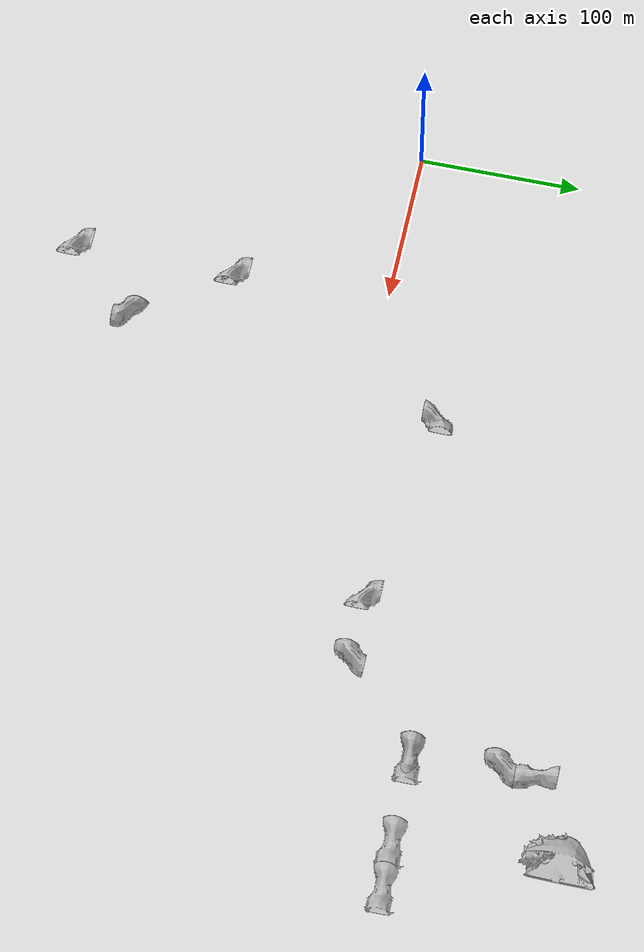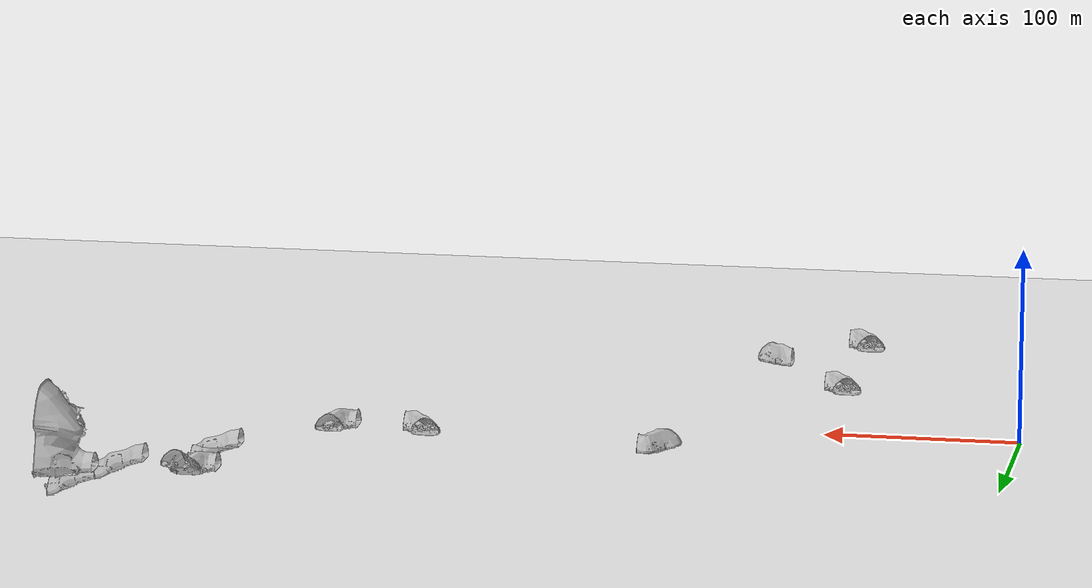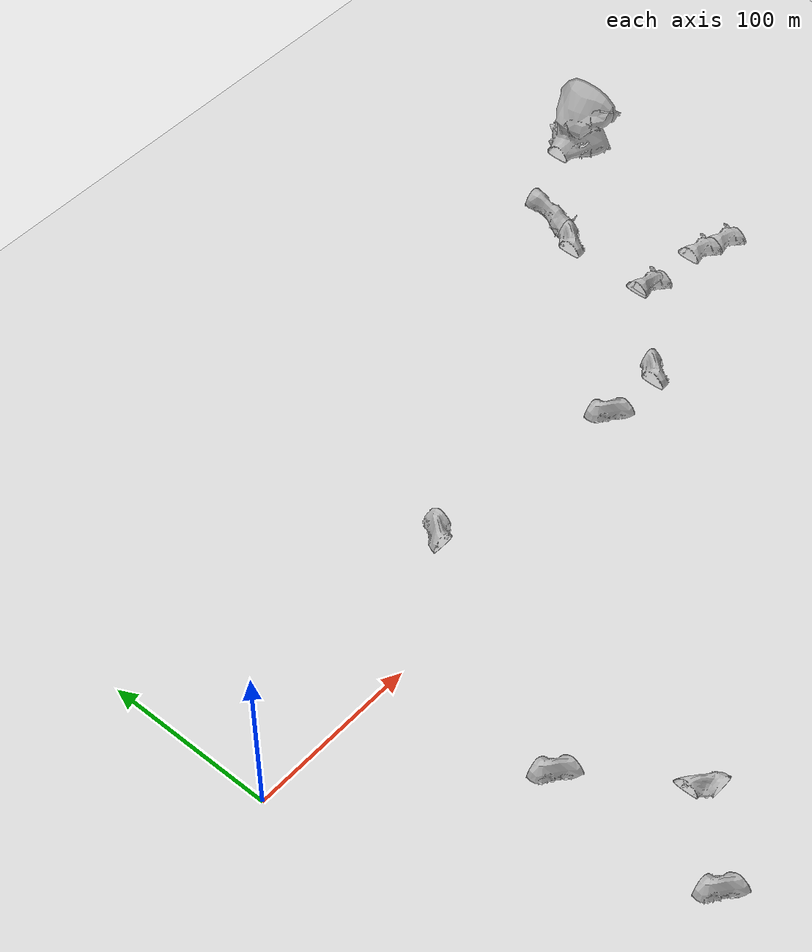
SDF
<sdf version="1.8">
 <world name="cosmos">
  <physics name="1ms" type="ignored">
   <max_step_size>0.001</max_step_size>
   <real_time_factor>1.0</real_time_factor>
  </physics>
  <plugin filename="gz-sim-physics-system" name="gz::sim::systems::Physics"/>
  <plugin filename="gz-sim-user-commands-system" name="gz::sim::systems::UserCommands"/>
  <plugin filename="gz-sim-scene-broadcaster-system" name="gz::sim::systems::SceneBroadcaster"/>
  <plugin filename="gz-sim-imu-system" name="gz::sim::systems::Imu"/>
  <plugin filename="gz-sim-sensors-system" name="gz::sim::systems::Sensors">
   <render_engine>ogre2</render_engine>
  </plugin>
  <light type="directional" name="sun">
   <pose>0 0 10 0 0 0</pose>
   <diffuse>0.8 0.8 0.8 1</diffuse>
   <specular>0.2 0.2 0.2 1</specular>
   <attenuation>
    <range>1000</range>
    <constant>0.9</constant>
    <linear>0.01</linear>
    <quadratic>0.001</quadratic>
   </attenuation>
   <direction>-0.5 0.1 -0.9</direction>
  </light>
  <model name="ground_plane">
   <static>true</static>
   <link name="link">
    <collision name="collision">
     <geometry><plane><normal>0 0 1</normal><size>10 10</size></plane></geometry>
    </collision>
    <visual name="visual">
     <geometry><plane><normal>0 0 1</normal><size>10 10</size></plane></geometry>
     <material>
      <ambient>0.8 0.8 0.8 1</ambient>
      <diffuse>0.8 0.8 0.8 1</diffuse>
      <specular>0.8 0.8 0.8 1</specular>
     </material>
    </visual>
   </link>
  </model>
  <include>
   <name>tile_3</name>
   <uri>model://Cave Cavern Split 02</uri>
   <pose>450.000000 175.000000 10.000000 0 0 0.000000</pose>
  </include>
  <include>
   <name>tile_5</name>
   <uri>model://Cave Elevation</uri>
   <pose>400.000000 150.000000 0.000000 0 0 3.141593</pose>
  </include>
  <include>
   <name>tile_7</name>
   <uri>model://Cave Corner 02</uri>
   <pose>400.000000 125.000000 0.000000 0 0 0.000000</pose>
  </include>
  <include>
   <name>tile_11</name>
   <uri>model://Cave Elevation</uri>
   <pose>400.000000 75.000000 -10.000000 0 0 -1.570796</pose>
  </include>
  <include>
   <name>tile_13</name>
   <uri>model://Cave Elevation</uri>
   <pose>450.000000 75.000000 -20.000000 0 0 -1.570796</pose>
  </include>
  <include>
   <name>tile_14</name>
   <uri>model://Cave Elevation</uri>
   <pose>475.000000 75.000000 -30.000000 0 0 -1.570796</pose>
  </include>
  <include>
   <name>tile_16</name>
   <uri>model://Cave Corner 02</uri>
   <pose>175.000000 50.000000 0.000000 0 0 3.141593</pose>
  </include>
  <include>
   <name>tile_25</name>
   <uri>model://Cave Corner 02</uri>
   <pose>300.000000 25.000000 0.000000 0 0 -1.570796</pose>
  </include>
  <include>
   <name>tile_27</name>
   <uri>model://Cave Corner 02</uri>
   <pose>350.000000 25.000000 0.000000 0 0 0.000000</pose>
  </include>
  <include>
   <name>tile_40</name>
   <uri>model://Cave Corner 02</uri>
   <pose>100.000000 -100.000000 0.000000 0 0 -1.570796</pose>
  </include>
  <include>
   <name>tile_45</name>
   <uri>model://Cave Corner 02</uri>
   <pose>150.000000 -150.000000 0.000000 0 0 1.570796</pose>
  </include>
  <include>
   <name>tile_48</name>
   <uri>model://Cave Corner 02</uri>
   <pose>100.000000 -200.000000 0.000000 0 0 -1.570796</pose>
  </include>
 </world>
</sdf>

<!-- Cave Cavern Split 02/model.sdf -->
<sdf version="1.6">
  <model name="Cave Cavern Split 02">
     <pose>0 0 0 0 0 0</pose>
   <static>true</static>
   <link name="link">
     <collision name="collision">
       <geometry>
         <mesh>
          <uri>model://Cave Cavern Split 02/meshes/cavernsplit02.dae</uri>
        </mesh>
       </geometry>
     </collision>
     <visual name="visual">
       <geometry>
         <mesh>
          <uri>model://Cave Cavern Split 02/meshes/cavernsplit02.dae</uri>
        </mesh>
       </geometry>
     </visual>
   </link>
 </model>
</sdf>

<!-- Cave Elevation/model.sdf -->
<sdf version="1.6">
  <model name="Cave Elevation">
    <pose>0 0 0 0 0 0</pose>
    <static>true</static>
    <link name="link">
      <collision name="collision">
        <geometry>
          <mesh>
            <uri>model://Cave Elevation/meshes/caveelevation.dae</uri>
         </mesh>
        </geometry>
      </collision>
      <visual name="visual">
        <geometry>
          <mesh>
            <uri>model://Cave Elevation/meshes/caveelevation.dae</uri>
         </mesh>
        </geometry>
      </visual>
    </link>
  </model>
 </sdf>

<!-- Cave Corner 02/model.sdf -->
<sdf version="1.6">
  <model name="Cave Corner 02">
    <pose>0 0 0 0 0 0</pose>
    <static>true</static>
    <link name="link">
      <collision name="collision">
        <geometry>
          <mesh>
           <uri>model://Cave Corner 02/meshes/cavecorner02.dae</uri>
         </mesh>
        </geometry>
      </collision>
      <visual name="visual">
        <geometry>
          <mesh>
           <uri>model://Cave Corner 02/meshes/cavecorner02.dae</uri>
         </mesh>
        </geometry>
      </visual>
    </link>
  </model>
 </sdf>
